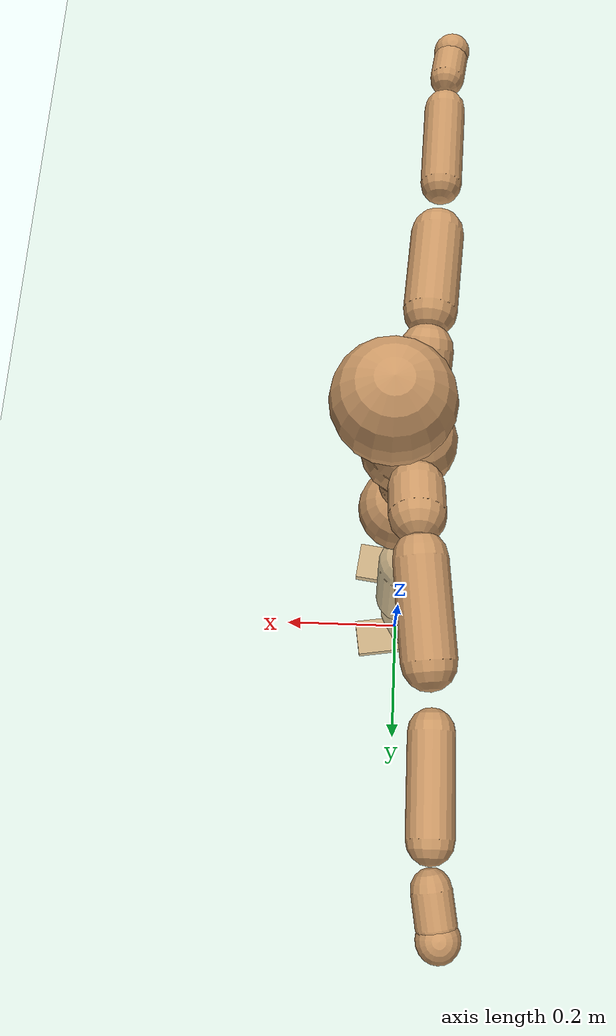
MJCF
<mujoco model="humanoid">
  <compiler coordinate="local"/>
  <default>
    <joint damping="0.0" armature="0.01" stiffness="0.0" limited="true"/>
    <geom conaffinity="1" condim="3" contype="7" margin="0.001" rgba="0.8 0.6 .4 1"/>
  </default>
  <asset>
    <texture type="skybox" builtin="gradient" rgb1=".4 .5 .6" rgb2="0 0 0" width="100" height="100"/>
    <texture builtin="flat" height="1278" mark="cross" markrgb="1 1 1" name="texgeom" random="0.01" rgb1="0.8 0.6 0.4" rgb2="0.8 0.6 0.4" type="cube" width="127"/>
    <texture builtin="checker" height="100" name="texplane" rgb1="0 0 0" rgb2="0.8 0.8 0.8" type="2d" width="100"/>
    <material name="MatPlane" reflectance="0.5" shininess="1" specular="1" texrepeat="60 60" texture="texplane"/>
    <material name="geom" texture="texgeom" texuniform="true"/>
  </asset>
  <worldbody>
    <light cutoff="100" diffuse="1 1 1" dir="-0 0 -1.3" directional="true" exponent="1" pos="0 0 1.3" specular=".1 .1 .1"/>
    <geom conaffinity="1" condim="3" name="floor" pos="0 0 0" rgba="0.8 0.9 0.8 1" size="100 100 .2" type="plane" material="MatPlane"/>
    <body name="Pelvis" pos="-0.003 -0.2259 0.0127">
      <freejoint name="Pelvis"/>
      <geom type="sphere" contype="1" conaffinity="1" density="500" size="0.0812" pos="0.0000 0.0000 0.0000" name="Pelvis"/>
      <body name="L_Hip" pos="-0.0178 0.0616 -0.0894">
        <joint name="L_Hip_x" type="hinge" pos="0 0 0" axis="1 0 0" stiffness="800" damping="80" armature="0.02" range="-180.0000 180.0000"/>
        <joint name="L_Hip_y" type="hinge" pos="0 0 0" axis="0 1 0" stiffness="800" damping="80" armature="0.02" range="-180.0000 180.0000"/>
        <joint name="L_Hip_z" type="hinge" pos="0 0 0" axis="0 0 1" stiffness="800" damping="80" armature="0.02" range="-180.0000 180.0000"/>
        <geom type="capsule" contype="1" conaffinity="1" density="500" fromto="0.0008 0.0071 -0.0732 0.0032 0.0285 -0.2929" size="0.0553" name="L_Hip"/>
        <body name="L_Knee" pos="0.004 0.0356 -0.3662">
          <joint name="L_Knee_x" type="hinge" pos="0 0 0" axis="1 0 0" stiffness="800" damping="80" armature="0.02" range="-180.0000 180.0000"/>
          <joint name="L_Knee_y" type="hinge" pos="0 0 0" axis="0 1 0" stiffness="800" damping="80" armature="0.02" range="-180.0000 180.0000"/>
          <joint name="L_Knee_z" type="hinge" pos="0 0 0" axis="0 0 1" stiffness="800" damping="80" armature="0.02" range="-180.0000 180.0000"/>
          <geom type="capsule" contype="1" conaffinity="1" density="500" fromto="-0.0079 -0.0026 -0.0762 -0.0316 -0.0104 -0.3046" size="0.0498" name="L_Knee"/>
          <body name="L_Ankle" pos="-0.0395 -0.013 -0.3808">
            <joint name="L_Ankle_x" type="hinge" pos="0 0 0" axis="1 0 0" stiffness="800" damping="80" armature="0.02" range="-180.0000 180.0000"/>
            <joint name="L_Ankle_y" type="hinge" pos="0 0 0" axis="0 1 0" stiffness="800" damping="80" armature="0.02" range="-180.0000 180.0000"/>
            <joint name="L_Ankle_z" type="hinge" pos="0 0 0" axis="0 0 1" stiffness="800" damping="80" armature="0.02" range="-180.0000 180.0000"/>
            <geom type="box" contype="1" conaffinity="1" density="500" pos="0.0577 0.0088 -0.0265" size="0.0817 0.0425 0.0192" quat="0.9971 0.0000 0.0000 0.0756" name="L_Ankle"/>
            <body name="L_Toe" pos="0.1155 0.0176 -0.053">
              <joint name="L_Toe_x" type="hinge" pos="0 0 0" axis="1 0 0" stiffness="500" damping="50" armature="0.02" range="-180.0000 180.0000"/>
              <joint name="L_Toe_y" type="hinge" pos="0 0 0" axis="0 1 0" stiffness="500" damping="50" armature="0.02" range="-180.0000 180.0000"/>
              <joint name="L_Toe_z" type="hinge" pos="0 0 0" axis="0 0 1" stiffness="500" damping="50" armature="0.02" range="-180.0000 180.0000"/>
              <geom type="box" contype="1" conaffinity="1" density="500" pos="0.0000 0.0000 0.0265" size="0.0009 0.0021 0.001" quat="0.9966 0.0000 0.0000 0.0826" name="L_Toe"/>
            </body>
          </body>
        </body>
      </body>
      <body name="R_Hip" pos="-0.0142 -0.0587 -0.0878">
        <joint name="R_Hip_x" type="hinge" pos="0 0 0" axis="1 0 0" stiffness="800" damping="80" armature="0.02" range="-180.0000 180.0000"/>
        <joint name="R_Hip_y" type="hinge" pos="0 0 0" axis="0 1 0" stiffness="800" damping="80" armature="0.02" range="-180.0000 180.0000"/>
        <joint name="R_Hip_z" type="hinge" pos="0 0 0" axis="0 0 1" stiffness="800" damping="80" armature="0.02" range="-180.0000 180.0000"/>
        <geom type="capsule" contype="1" conaffinity="1" density="500" fromto="-0.0000 -0.0079 -0.0750 -0.0001 -0.0318 -0.2999" size="0.0545" name="R_Hip"/>
        <body name="R_Knee" pos="-0.0001 -0.0397 -0.3749">
          <joint name="R_Knee_x" type="hinge" pos="0 0 0" axis="1 0 0" stiffness="800" damping="80" armature="0.02" range="-180.0000 180.0000"/>
          <joint name="R_Knee_y" type="hinge" pos="0 0 0" axis="0 1 0" stiffness="800" damping="80" armature="0.02" range="-180.0000 180.0000"/>
          <joint name="R_Knee_z" type="hinge" pos="0 0 0" axis="0 0 1" stiffness="800" damping="80" armature="0.02" range="-180.0000 180.0000"/>
          <geom type="capsule" contype="1" conaffinity="1" density="500" fromto="-0.0074 0.0032 -0.0756 -0.0296 0.0126 -0.3026" size="0.0502" name="R_Knee"/>
          <body name="R_Ankle" pos="-0.037 0.0158 -0.3782">
            <joint name="R_Ankle_x" type="hinge" pos="0 0 0" axis="1 0 0" stiffness="800" damping="80" armature="0.02" range="-180.0000 180.0000"/>
            <joint name="R_Ankle_y" type="hinge" pos="0 0 0" axis="0 1 0" stiffness="800" damping="80" armature="0.02" range="-180.0000 180.0000"/>
            <joint name="R_Ankle_z" type="hinge" pos="0 0 0" axis="0 0 1" stiffness="800" damping="80" armature="0.02" range="-180.0000 180.0000"/>
            <geom type="box" contype="1" conaffinity="1" density="500" pos="0.0590 -0.0076 -0.0224" size="0.0828 0.0446 0.0185" quat="0.9979 0.0000 0.0000 -0.0640" name="R_Ankle"/>
            <body name="R_Toe" pos="0.118 -0.0152 -0.0447">
              <joint name="R_Toe_x" type="hinge" pos="0 0 0" axis="1 0 0" stiffness="500" damping="50" armature="0.02" range="-180.0000 180.0000"/>
              <joint name="R_Toe_y" type="hinge" pos="0 0 0" axis="0 1 0" stiffness="500" damping="50" armature="0.02" range="-180.0000 180.0000"/>
              <joint name="R_Toe_z" type="hinge" pos="0 0 0" axis="0 0 1" stiffness="500" damping="50" armature="0.02" range="-180.0000 180.0000"/>
              <geom type="box" contype="1" conaffinity="1" density="500" pos="0.0000 0.0000 0.0253" size="0.0008 0.0022 0.0011" quat="0.9985 0.0000 0.0000 -0.0548" name="R_Toe"/>
            </body>
          </body>
        </body>
      </body>
      <body name="Torso" pos="-0.0113 -0.0037 0.1034">
        <joint name="Torso_x" type="hinge" pos="0 0 0" axis="1 0 0" stiffness="1000" damping="100" armature="0.02" range="-180.0000 180.0000"/>
        <joint name="Torso_y" type="hinge" pos="0 0 0" axis="0 1 0" stiffness="1000" damping="100" armature="0.02" range="-180.0000 180.0000"/>
        <joint name="Torso_z" type="hinge" pos="0 0 0" axis="0 0 1" stiffness="1000" damping="100" armature="0.02" range="-180.0000 180.0000"/>
        <geom type="capsule" contype="1" conaffinity="1" density="500" fromto="0.0010 0.0034 0.0918 0.0006 0.0023 0.0612" size="0.054777" name="Torso"/>
        <body name="Spine" pos="0.0016 0.0057 0.1531">
          <joint name="Spine_x" type="hinge" pos="0 0 0" axis="1 0 0" stiffness="1000" damping="100" armature="0.02" range="-180.0000 180.0000"/>
          <joint name="Spine_y" type="hinge" pos="0 0 0" axis="0 1 0" stiffness="1000" damping="100" armature="0.02" range="-180.0000 180.0000"/>
          <joint name="Spine_z" type="hinge" pos="0 0 0" axis="0 0 1" stiffness="1000" damping="100" armature="0.02" range="-180.0000 180.0000"/>
          <geom type="capsule" contype="1" conaffinity="1" density="500" fromto="0.0151 0.0016 0.0310 0.0101 0.0010 0.0207" size="0.054777" name="Spine"/>
          <body name="Chest" pos="0.0251 0.0026 0.0516">
            <joint name="Chest_x" type="hinge" pos="0 0 0" axis="1 0 0" stiffness="1000" damping="100" armature="0.02" range="-180.0000 180.0000"/>
            <joint name="Chest_y" type="hinge" pos="0 0 0" axis="0 1 0" stiffness="1000" damping="100" armature="0.02" range="-180.0000 180.0000"/>
            <joint name="Chest_z" type="hinge" pos="0 0 0" axis="0 0 1" stiffness="1000" damping="100" armature="0.02" range="-180.0000 180.0000"/>
            <geom type="capsule" contype="1" conaffinity="1" density="500" fromto="-0.0212 -0.0009 0.0842 -0.0141 -0.0006 0.0562" size="0.075702" name="Chest"/>
            <body name="Neck" pos="-0.0402 -0.0031 0.2014">
              <joint name="Neck_x" type="hinge" pos="0 0 0" axis="1 0 0" stiffness="500" damping="50" armature="0.02" range="-180.0000 180.0000"/>
              <joint name="Neck_y" type="hinge" pos="0 0 0" axis="0 1 0" stiffness="500" damping="50" armature="0.02" range="-180.0000 180.0000"/>
              <joint name="Neck_z" type="hinge" pos="0 0 0" axis="0 0 1" stiffness="500" damping="50" armature="0.02" range="-180.0000 180.0000"/>
              <geom type="capsule" contype="1" conaffinity="1" density="500" fromto="0.0101 0.0012 0.0136 0.0404 0.0047 0.0544" size="0.035712" name="Neck"/>
              <body name="Head" pos="0.0505 0.0059 0.068">
                <joint name="Head_x" type="hinge" pos="0 0 0" axis="1 0 0" stiffness="500" damping="50" armature="0.02" range="-180.0000 180.0000"/>
                <joint name="Head_y" type="hinge" pos="0 0 0" axis="0 1 0" stiffness="500" damping="50" armature="0.02" range="-180.0000 180.0000"/>
                <joint name="Head_z" type="hinge" pos="0 0 0" axis="0 0 1" stiffness="500" damping="50" armature="0.02" range="-180.0000 180.0000"/>
                <geom type="sphere" contype="1" conaffinity="1" density="500" size="0.0948" pos="0.0000 0.0000 0.0000" name="Head"/>
              </body>
            </body>
            <body name="L_Thorax" pos="-0.0304 0.0696 0.1115">
              <joint name="L_Thorax_x" type="hinge" pos="0 0 0" axis="1 0 0" stiffness="500" damping="50" armature="0.02" range="-180.0000 180.0000"/>
              <joint name="L_Thorax_y" type="hinge" pos="0 0 0" axis="0 1 0" stiffness="500" damping="50" armature="0.02" range="-180.0000 180.0000"/>
              <joint name="L_Thorax_z" type="hinge" pos="0 0 0" axis="0 0 1" stiffness="500" damping="50" armature="0.02" range="-180.0000 180.0000"/>
              <geom type="capsule" contype="1" conaffinity="1" density="500" fromto="-0.0006 0.0165 0.0063 -0.0025 0.0661 0.0252" size="0.0451" name="L_Thorax"/>
              <body name="L_Shoulder" pos="-0.0032 0.0827 0.0314">
                <joint name="L_Shoulder_x" type="hinge" pos="0 0 0" axis="1 0 0" stiffness="500" damping="50" armature="0.02" range="-720.0000 720.0000"/>
                <joint name="L_Shoulder_y" type="hinge" pos="0 0 0" axis="0 1 0" stiffness="500" damping="50" armature="0.02" range="-720.0000 720.0000"/>
                <joint name="L_Shoulder_z" type="hinge" pos="0 0 0" axis="0 0 1" stiffness="500" damping="50" armature="0.02" range="-720.0000 720.0000"/>
                <geom type="capsule" contype="1" conaffinity="1" density="500" fromto="-0.0053 0.0505 -0.0032 -0.0213 0.2020 -0.0126" size="0.0429" name="L_Shoulder"/>
                <body name="L_Elbow" pos="-0.0266 0.2526 -0.0158">
                  <joint name="L_Elbow_x" type="hinge" pos="0 0 0" axis="1 0 0" stiffness="500" damping="50" armature="0.02" range="-720.0000 720.0000"/>
                  <joint name="L_Elbow_y" type="hinge" pos="0 0 0" axis="0 1 0" stiffness="500" damping="50" armature="0.02" range="-720.0000 720.0000"/>
                  <joint name="L_Elbow_z" type="hinge" pos="0 0 0" axis="0 0 1" stiffness="500" damping="50" armature="0.02" range="-720.0000 720.0000"/>
                  <geom type="capsule" contype="1" conaffinity="1" density="500" fromto="-0.0002 0.0481 0.0015 -0.0008 0.1926 0.0060" size="0.0349" name="L_Elbow"/>
                  <body name="L_Wrist" pos="-0.001 0.2407 0.0076">
                    <joint name="L_Wrist_x" type="hinge" pos="0 0 0" axis="1 0 0" stiffness="300" damping="30" armature="0.02" range="-180.0000 180.0000"/>
                    <joint name="L_Wrist_y" type="hinge" pos="0 0 0" axis="0 1 0" stiffness="300" damping="30" armature="0.02" range="-180.0000 180.0000"/>
                    <joint name="L_Wrist_z" type="hinge" pos="0 0 0" axis="0 0 1" stiffness="300" damping="30" armature="0.02" range="-180.0000 180.0000"/>
                    <geom type="capsule" contype="1" conaffinity="1" density="500" fromto="-0.0026 0.0157 -0.0020 -0.0106 0.0629 -0.0078" size="0.0292" name="L_Wrist"/>
                    <body name="L_Hand" pos="-0.0132 0.0786 -0.0098">
                      <joint name="L_Hand_x" type="hinge" pos="0 0 0" axis="1 0 0" stiffness="300" damping="30" armature="0.02" range="-180.0000 180.0000"/>
                      <joint name="L_Hand_y" type="hinge" pos="0 0 0" axis="0 1 0" stiffness="300" damping="30" armature="0.02" range="-180.0000 180.0000"/>
                      <joint name="L_Hand_z" type="hinge" pos="0 0 0" axis="0 0 1" stiffness="300" damping="30" armature="0.02" range="-180.0000 180.0000"/>
                      <geom type="sphere" contype="1" conaffinity="1" density="500" size="0.0316" pos="0.0000 0.0000 0.0000" name="L_Hand"/>
                    </body>
                  </body>
                </body>
              </body>
            </body>
            <body name="R_Thorax" pos="-0.0352 -0.0709 0.1083">
              <joint name="R_Thorax_x" type="hinge" pos="0 0 0" axis="1 0 0" stiffness="500" damping="50" armature="0.02" range="-180.0000 180.0000"/>
              <joint name="R_Thorax_y" type="hinge" pos="0 0 0" axis="0 1 0" stiffness="500" damping="50" armature="0.02" range="-180.0000 180.0000"/>
              <joint name="R_Thorax_z" type="hinge" pos="0 0 0" axis="0 0 1" stiffness="500" damping="50" armature="0.02" range="-180.0000 180.0000"/>
              <geom type="capsule" contype="1" conaffinity="1" density="500" fromto="-0.0014 -0.0175 0.0063 -0.0057 -0.0701 0.0252" size="0.0439" name="R_Thorax"/>
              <body name="R_Shoulder" pos="-0.0071 -0.0876 0.0315">
                <joint name="R_Shoulder_x" type="hinge" pos="0 0 0" axis="1 0 0" stiffness="500" damping="50" armature="0.02" range="-720.0000 720.0000"/>
                <joint name="R_Shoulder_y" type="hinge" pos="0 0 0" axis="0 1 0" stiffness="500" damping="50" armature="0.02" range="-720.0000 720.0000"/>
                <joint name="R_Shoulder_z" type="hinge" pos="0 0 0" axis="0 0 1" stiffness="500" damping="50" armature="0.02" range="-720.0000 720.0000"/>
                <geom type="capsule" contype="1" conaffinity="1" density="500" fromto="-0.0032 -0.0490 -0.0027 -0.0128 -0.1962 -0.0109" size="0.0441" name="R_Shoulder"/>
                <body name="R_Elbow" pos="-0.016 -0.2452 -0.0136">
                  <joint name="R_Elbow_x" type="hinge" pos="0 0 0" axis="1 0 0" stiffness="500" damping="50" armature="0.02" range="-720.0000 720.0000"/>
                  <joint name="R_Elbow_y" type="hinge" pos="0 0 0" axis="0 1 0" stiffness="500" damping="50" armature="0.02" range="-720.0000 720.0000"/>
                  <joint name="R_Elbow_z" type="hinge" pos="0 0 0" axis="0 0 1" stiffness="500" damping="50" armature="0.02" range="-720.0000 720.0000"/>
                  <geom type="capsule" contype="1" conaffinity="1" density="500" fromto="-0.0013 -0.0492 0.0009 -0.0052 -0.1969 0.0038" size="0.0347" name="R_Elbow"/>
                  <body name="R_Wrist" pos="-0.0064 -0.2462 0.0047">
                    <joint name="R_Wrist_x" type="hinge" pos="0 0 0" axis="1 0 0" stiffness="300" damping="30" armature="0.02" range="-180.0000 180.0000"/>
                    <joint name="R_Wrist_y" type="hinge" pos="0 0 0" axis="0 1 0" stiffness="300" damping="30" armature="0.02" range="-180.0000 180.0000"/>
                    <joint name="R_Wrist_z" type="hinge" pos="0 0 0" axis="0 0 1" stiffness="300" damping="30" armature="0.02" range="-180.0000 180.0000"/>
                    <geom type="capsule" contype="1" conaffinity="1" density="500" fromto="-0.0020 -0.0157 -0.0014 -0.0080 -0.0626 -0.0056" size="0.0295" name="R_Wrist"/>
                    <body name="R_Hand" pos="-0.0099 -0.0783 -0.007">
                      <joint name="R_Hand_x" type="hinge" pos="0 0 0" axis="1 0 0" stiffness="300" damping="30" armature="0.02" range="-180.0000 180.0000"/>
                      <joint name="R_Hand_y" type="hinge" pos="0 0 0" axis="0 1 0" stiffness="300" damping="30" armature="0.02" range="-180.0000 180.0000"/>
                      <joint name="R_Hand_z" type="hinge" pos="0 0 0" axis="0 0 1" stiffness="300" damping="30" armature="0.02" range="-180.0000 180.0000"/>
                      <geom type="sphere" contype="1" conaffinity="1" density="500" size="0.0313" pos="0.0000 0.0000 0.0000" name="R_Hand"/>
                    </body>
                  </body>
                </body>
              </body>
            </body>
          </body>
        </body>
      </body>
    </body>
  </worldbody>
  <actuator>
    <motor name="L_Hip_x" joint="L_Hip_x" gear="500"/>
    <motor name="L_Hip_y" joint="L_Hip_y" gear="500"/>
    <motor name="L_Hip_z" joint="L_Hip_z" gear="500"/>
    <motor name="L_Knee_x" joint="L_Knee_x" gear="500"/>
    <motor name="L_Knee_y" joint="L_Knee_y" gear="500"/>
    <motor name="L_Knee_z" joint="L_Knee_z" gear="500"/>
    <motor name="L_Ankle_x" joint="L_Ankle_x" gear="500"/>
    <motor name="L_Ankle_y" joint="L_Ankle_y" gear="500"/>
    <motor name="L_Ankle_z" joint="L_Ankle_z" gear="500"/>
    <motor name="L_Toe_x" joint="L_Toe_x" gear="500"/>
    <motor name="L_Toe_y" joint="L_Toe_y" gear="500"/>
    <motor name="L_Toe_z" joint="L_Toe_z" gear="500"/>
    <motor name="R_Hip_x" joint="R_Hip_x" gear="500"/>
    <motor name="R_Hip_y" joint="R_Hip_y" gear="500"/>
    <motor name="R_Hip_z" joint="R_Hip_z" gear="500"/>
    <motor name="R_Knee_x" joint="R_Knee_x" gear="500"/>
    <motor name="R_Knee_y" joint="R_Knee_y" gear="500"/>
    <motor name="R_Knee_z" joint="R_Knee_z" gear="500"/>
    <motor name="R_Ankle_x" joint="R_Ankle_x" gear="500"/>
    <motor name="R_Ankle_y" joint="R_Ankle_y" gear="500"/>
    <motor name="R_Ankle_z" joint="R_Ankle_z" gear="500"/>
    <motor name="R_Toe_x" joint="R_Toe_x" gear="500"/>
    <motor name="R_Toe_y" joint="R_Toe_y" gear="500"/>
    <motor name="R_Toe_z" joint="R_Toe_z" gear="500"/>
    <motor name="Torso_x" joint="Torso_x" gear="500"/>
    <motor name="Torso_y" joint="Torso_y" gear="500"/>
    <motor name="Torso_z" joint="Torso_z" gear="500"/>
    <motor name="Spine_x" joint="Spine_x" gear="500"/>
    <motor name="Spine_y" joint="Spine_y" gear="500"/>
    <motor name="Spine_z" joint="Spine_z" gear="500"/>
    <motor name="Chest_x" joint="Chest_x" gear="500"/>
    <motor name="Chest_y" joint="Chest_y" gear="500"/>
    <motor name="Chest_z" joint="Chest_z" gear="500"/>
    <motor name="Neck_x" joint="Neck_x" gear="500"/>
    <motor name="Neck_y" joint="Neck_y" gear="500"/>
    <motor name="Neck_z" joint="Neck_z" gear="500"/>
    <motor name="Head_x" joint="Head_x" gear="500"/>
    <motor name="Head_y" joint="Head_y" gear="500"/>
    <motor name="Head_z" joint="Head_z" gear="500"/>
    <motor name="L_Thorax_x" joint="L_Thorax_x" gear="500"/>
    <motor name="L_Thorax_y" joint="L_Thorax_y" gear="500"/>
    <motor name="L_Thorax_z" joint="L_Thorax_z" gear="500"/>
    <motor name="L_Shoulder_x" joint="L_Shoulder_x" gear="500"/>
    <motor name="L_Shoulder_y" joint="L_Shoulder_y" gear="500"/>
    <motor name="L_Shoulder_z" joint="L_Shoulder_z" gear="500"/>
    <motor name="L_Elbow_x" joint="L_Elbow_x" gear="500"/>
    <motor name="L_Elbow_y" joint="L_Elbow_y" gear="500"/>
    <motor name="L_Elbow_z" joint="L_Elbow_z" gear="500"/>
    <motor name="L_Wrist_x" joint="L_Wrist_x" gear="500"/>
    <motor name="L_Wrist_y" joint="L_Wrist_y" gear="500"/>
    <motor name="L_Wrist_z" joint="L_Wrist_z" gear="500"/>
    <motor name="L_Hand_x" joint="L_Hand_x" gear="500"/>
    <motor name="L_Hand_y" joint="L_Hand_y" gear="500"/>
    <motor name="L_Hand_z" joint="L_Hand_z" gear="500"/>
    <motor name="R_Thorax_x" joint="R_Thorax_x" gear="500"/>
    <motor name="R_Thorax_y" joint="R_Thorax_y" gear="500"/>
    <motor name="R_Thorax_z" joint="R_Thorax_z" gear="500"/>
    <motor name="R_Shoulder_x" joint="R_Shoulder_x" gear="500"/>
    <motor name="R_Shoulder_y" joint="R_Shoulder_y" gear="500"/>
    <motor name="R_Shoulder_z" joint="R_Shoulder_z" gear="500"/>
    <motor name="R_Elbow_x" joint="R_Elbow_x" gear="500"/>
    <motor name="R_Elbow_y" joint="R_Elbow_y" gear="500"/>
    <motor name="R_Elbow_z" joint="R_Elbow_z" gear="500"/>
    <motor name="R_Wrist_x" joint="R_Wrist_x" gear="500"/>
    <motor name="R_Wrist_y" joint="R_Wrist_y" gear="500"/>
    <motor name="R_Wrist_z" joint="R_Wrist_z" gear="500"/>
    <motor name="R_Hand_x" joint="R_Hand_x" gear="500"/>
    <motor name="R_Hand_y" joint="R_Hand_y" gear="500"/>
    <motor name="R_Hand_z" joint="R_Hand_z" gear="500"/>
  </actuator>
  <contact>
    <exclude body1="Torso" body2="Chest"/>
    <exclude body1="Head" body2="Chest"/>
    <exclude body1="R_Knee" body2="R_Toe"/>
    <exclude body1="R_Knee" body2="L_Ankle"/>
    <exclude body1="R_Knee" body2="L_Toe"/>
    <exclude body1="L_Knee" body2="L_Toe"/>
    <exclude body1="L_Knee" body2="R_Ankle"/>
    <exclude body1="L_Knee" body2="R_Toe"/>
    <exclude body1="L_Shoulder" body2="Chest"/>
    <exclude body1="R_Shoulder" body2="Chest"/>
  </contact>
  <sensor/>
  <size njmax="700" nconmax="700"/>
</mujoco>
